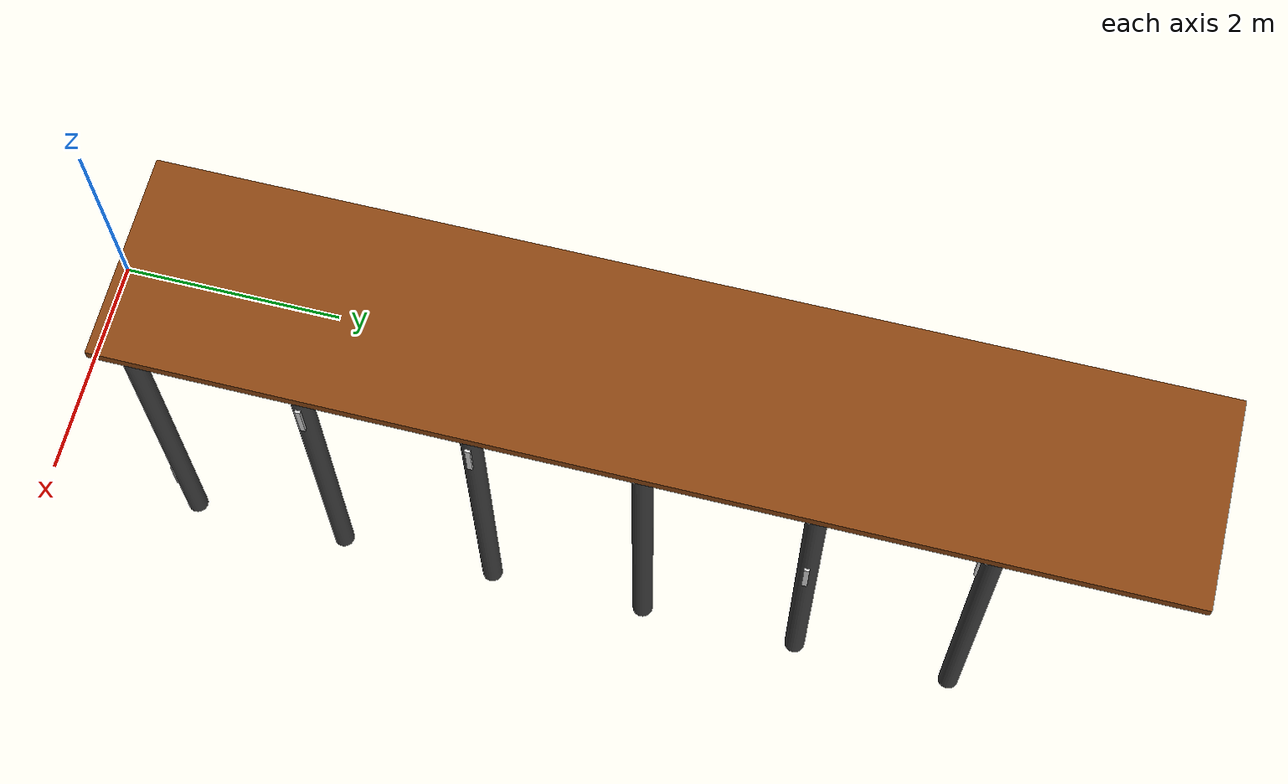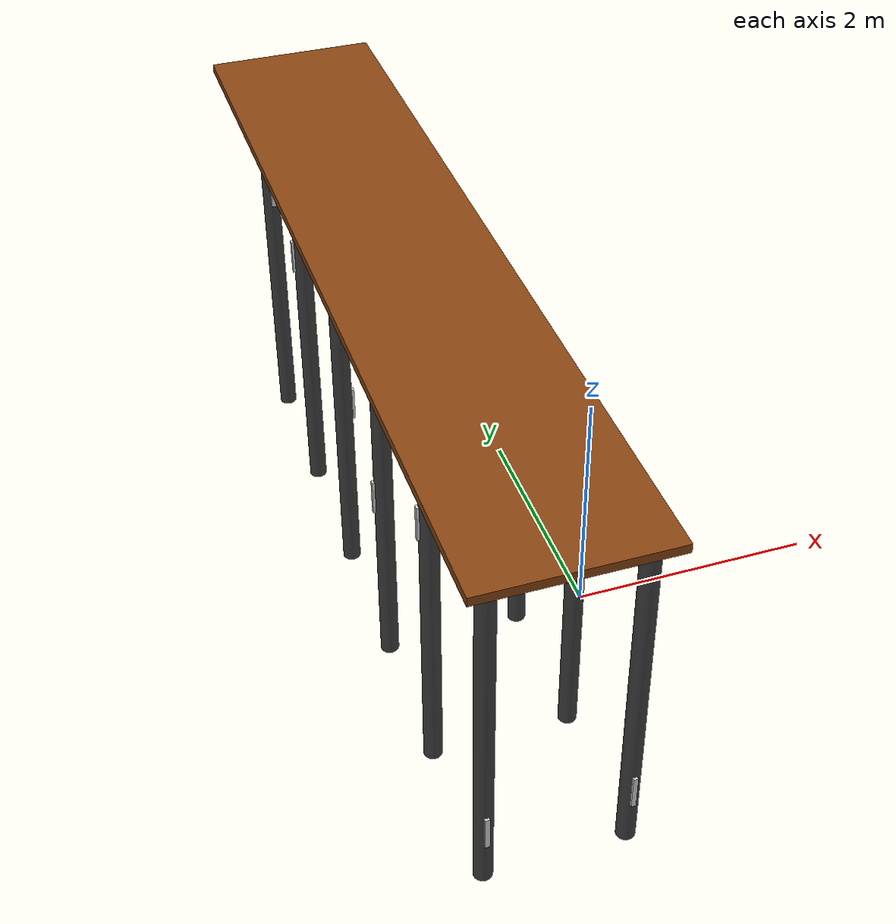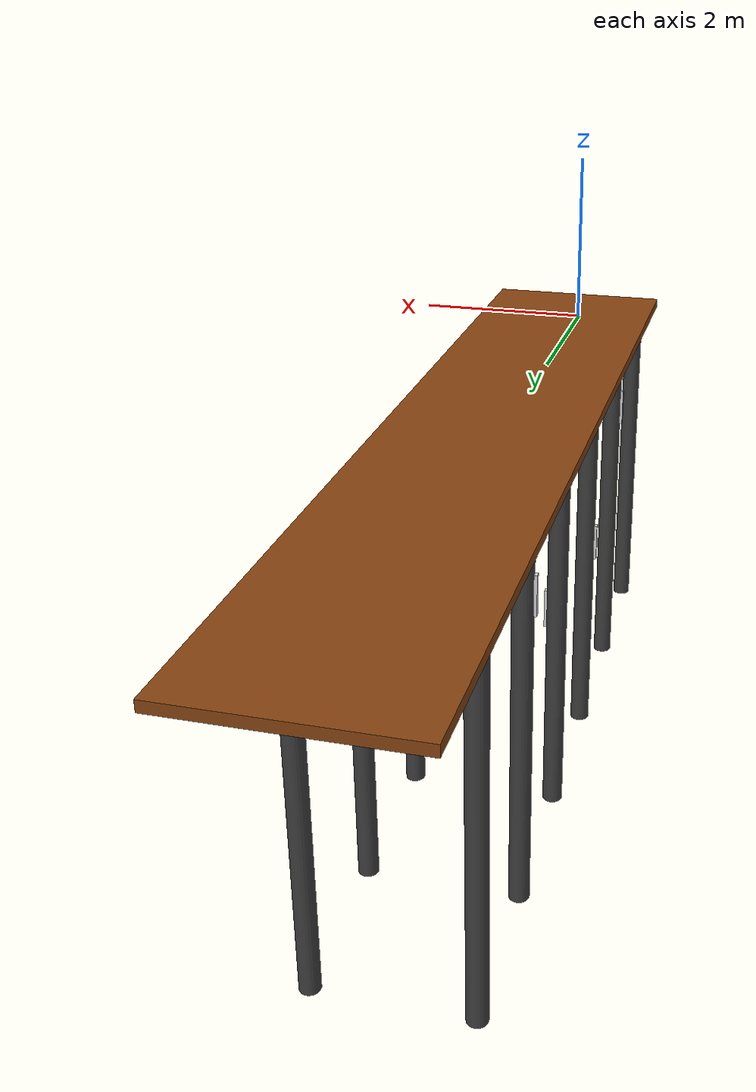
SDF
<sdf version="1.6">
 <world name="tims_world">
  <plugin filename="gz-sim-physics-system" name="gz::sim::systems::Physics"/>
  <plugin filename="gz-sim-user-commands-system" name="gz::sim::systems::UserCommands"/>
  <plugin filename="gz-sim-scene-broadcaster-system" name="gz::sim::systems::SceneBroadcaster"/>
  <plugin filename="libgz-sim-imu-system.so" name="gz::sim::systems::Imu"/>
  <plugin filename="gz-sim-buoyancy-system" name="gz::sim::systems::Buoyancy">
   <graded_buoyancy>
    <default_density>1000</default_density>
    <density_change><above_depth>0</above_depth><density>1</density></density_change>
   </graded_buoyancy>
   <enable>bluerov2</enable>
  </plugin>
  <plugin filename="ignition-gazebo-particle-emitter2-system" name="ignition::gazebo::systems::ParticleEmitter2"/>
  <include><uri>https://fuel.gazebosim.org/1.0/OpenRobotics/models/Sun</uri></include>
  <include><uri>model://fog_generator</uri></include>
  <include><uri>model://dock</uri></include>
 </world>
</sdf>

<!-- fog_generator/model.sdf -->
<sdf version="1.6">
  <model name="fog_generator">
    <pose>0 0 -3 0 -1.5707 0</pose>
    <static>true</static>
    <link name="fog_link">
      <particle_emitter name="emitter" type="box">
        <emitting>true</emitting>
        <size>20 20 4</size>
        <particle_size>1 1 1</particle_size>
        <lifetime>30</lifetime>
        <min_velocity>0.1</min_velocity>
        <max_velocity>0.2</max_velocity>
        <scale_rate>0.5</scale_rate>
        <rate>10</rate>
        <material>
          <diffuse>0.7 0.7 0.7</diffuse>
          <specular>1.0 1.0 1.0</specular>
          <pbr>
            <metal>
              <albedo_map>materials/textures/fog.png</albedo_map>
            </metal>
          </pbr>
        </material>
        <color_range_image>materials/textures/fogcolors.png</color_range_image>
      </particle_emitter>
    </link>
  </model>
</sdf>

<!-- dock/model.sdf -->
<sdf version="1.6">
  <model name="custom_model">
    <static>true</static>

    <link name="dock_platform">
      <pose>0 5 0.25 0 0 0</pose>
      <collision name="dock_platform_collision">
        <geometry>
          <box><size>2 10 0.1</size></box>
        </geometry>
      </collision>
      <visual name="dock_platform_visual">
        <geometry>
          <box><size>2 10 0.1</size></box>
        </geometry>

        <material>
            <ambient>0.54 0.27 0.07 1 </ambient>
            <diffuse>0.54 0.27 0.07 1 </diffuse>
            <specular>1 1 1 1</specular>
        </material>

      </visual>
    </link>

    <link name="cylinder0">
      <pose>0.75 0.25 -1.75 0 0 0 </pose>
      <collision name="cylinder0_collision">
        <geometry>
          <cylinder><radius>0.1</radius><length>4</length></cylinder>
        </geometry>
      </collision>
      <visual name="cylinder0_visual">
        <geometry>
          <cylinder><radius>0.1</radius><length>4</length></cylinder>
        </geometry>

        <material>
            <ambient>0.25 0.25 0.25 1 </ambient>
            <diffuse>0.25 0.25 0.25 1 </diffuse>
            <specular>1 1 1 1</specular>
        </material>

      </visual>
    </link>

    <link name="anode_0">
      <pose>0.75 0.15 -3.0 0 0 0 </pose>
      <collision name="anode_0_collision">
        <geometry>
          <box><size>0.05 0.05 0.4</size></box>
        </geometry>
      </collision>
      <visual name="anode_0_visual">
        <geometry>
          <box><size>0.05 0.05 0.4</size></box>
        </geometry>

        <material>
            <ambient>0.85 0.85 0.85 1 </ambient>
            <diffuse>0.85 0.85 0.85 1 </diffuse>
            <specular>1 1 1 1</specular>
        </material>

      </visual>
    </link>

    <link name="cylinder1">
      <pose>-0.75 0.25 -1.75 0 0 0 </pose>
      <collision name="cylinder1_collision">
        <geometry>
          <cylinder><radius>0.1</radius><length>4</length></cylinder>
        </geometry>
      </collision>
      <visual name="cylinder1_visual">
        <geometry>
          <cylinder><radius>0.1</radius><length>4</length></cylinder>
        </geometry>

        <material>
            <ambient>0.25 0.25 0.25 1 </ambient>
            <diffuse>0.25 0.25 0.25 1 </diffuse>
            <specular>1 1 1 1</specular>
        </material>

      </visual>
    </link>

    <link name="anode_1">
      <pose>-0.75 0.15 -3.0 0 0 0 </pose>
      <collision name="anode_1_collision">
        <geometry>
          <box><size>0.05 0.05 0.4</size></box>
        </geometry>
      </collision>
      <visual name="anode_1_visual">
        <geometry>
          <box><size>0.05 0.05 0.4</size></box>
        </geometry>

        <material>
            <ambient>0.85 0.85 0.85 1 </ambient>
            <diffuse>0.85 0.85 0.85 1 </diffuse>
            <specular>1 1 1 1</specular>
        </material>

      </visual>
    </link>

    <link name="cylinder2">
      <pose>0.75 1.8333333333333333 -1.75 0 0 0 </pose>
      <collision name="cylinder2_collision">
        <geometry>
          <cylinder><radius>0.1</radius><length>4</length></cylinder>
        </geometry>
      </collision>
      <visual name="cylinder2_visual">
        <geometry>
          <cylinder><radius>0.1</radius><length>4</length></cylinder>
        </geometry>

        <material>
            <ambient>0.25 0.25 0.25 1 </ambient>
            <diffuse>0.25 0.25 0.25 1 </diffuse>
            <specular>1 1 1 1</specular>
        </material>

      </visual>
    </link>

    <link name="anode_2">
      <pose>0.85 1.8333333333333333 -0.5 0 0 0 </pose>
      <collision name="anode_2_collision">
        <geometry>
          <box><size>0.05 0.05 0.4</size></box>
        </geometry>
      </collision>
      <visual name="anode_2_visual">
        <geometry>
          <box><size>0.05 0.05 0.4</size></box>
        </geometry>

        <material>
            <ambient>0.85 0.85 0.85 1 </ambient>
            <diffuse>0.85 0.85 0.85 1 </diffuse>
            <specular>1 1 1 1</specular>
        </material>

      </visual>
    </link>

    <link name="cylinder3">
      <pose>-0.75 1.8333333333333333 -1.75 0 0 0 </pose>
      <collision name="cylinder3_collision">
        <geometry>
          <cylinder><radius>0.1</radius><length>4</length></cylinder>
        </geometry>
      </collision>
      <visual name="cylinder3_visual">
        <geometry>
          <cylinder><radius>0.1</radius><length>4</length></cylinder>
        </geometry>

        <material>
            <ambient>0.25 0.25 0.25 1 </ambient>
            <diffuse>0.25 0.25 0.25 1 </diffuse>
            <specular>1 1 1 1</specular>
        </material>

      </visual>
    </link>

    <link name="anode_3">
      <pose>-0.85 1.8333333333333333 -0.5 0 0 0 </pose>
      <collision name="anode_3_collision">
        <geometry>
          <box><size>0.05 0.05 0.4</size></box>
        </geometry>
      </collision>
      <visual name="anode_3_visual">
        <geometry>
          <box><size>0.05 0.05 0.4</size></box>
        </geometry>

        <material>
            <ambient>0.85 0.85 0.85 1 </ambient>
            <diffuse>0.85 0.85 0.85 1 </diffuse>
            <specular>1 1 1 1</specular>
        </material>

      </visual>
    </link>

    <link name="cylinder4">
      <pose>0.75 3.4166666666666665 -1.75 0 0 0 </pose>
      <collision name="cylinder4_collision">
        <geometry>
          <cylinder><radius>0.1</radius><length>4</length></cylinder>
        </geometry>
      </collision>
      <visual name="cylinder4_visual">
        <geometry>
          <cylinder><radius>0.1</radius><length>4</length></cylinder>
        </geometry>

        <material>
            <ambient>0.25 0.25 0.25 1 </ambient>
            <diffuse>0.25 0.25 0.25 1 </diffuse>
            <specular>1 1 1 1</specular>
        </material>

      </visual>
    </link>

    <link name="anode_4">
      <pose>0.85 3.4166666666666665 -0.5 0 0 0 </pose>
      <collision name="anode_4_collision">
        <geometry>
          <box><size>0.05 0.05 0.4</size></box>
        </geometry>
      </collision>
      <visual name="anode_4_visual">
        <geometry>
          <box><size>0.05 0.05 0.4</size></box>
        </geometry>

        <material>
            <ambient>0.85 0.85 0.85 1 </ambient>
            <diffuse>0.85 0.85 0.85 1 </diffuse>
            <specular>1 1 1 1</specular>
        </material>

      </visual>
    </link>

    <link name="cylinder5">
      <pose>-0.75 3.4166666666666665 -1.75 0 0 0 </pose>
      <collision name="cylinder5_collision">
        <geometry>
          <cylinder><radius>0.1</radius><length>4</length></cylinder>
        </geometry>
      </collision>
      <visual name="cylinder5_visual">
        <geometry>
          <cylinder><radius>0.1</radius><length>4</length></cylinder>
        </geometry>

        <material>
            <ambient>0.25 0.25 0.25 1 </ambient>
            <diffuse>0.25 0.25 0.25 1 </diffuse>
            <specular>1 1 1 1</specular>
        </material>

      </visual>
    </link>

    <link name="anode_5">
      <pose>-0.85 3.4166666666666665 -1.5 0 0 0 </pose>
      <collision name="anode_5_collision">
        <geometry>
          <box><size>0.05 0.05 0.4</size></box>
        </geometry>
      </collision>
      <visual name="anode_5_visual">
        <geometry>
          <box><size>0.05 0.05 0.4</size></box>
        </geometry>

        <material>
            <ambient>0.85 0.85 0.85 1 </ambient>
            <diffuse>0.85 0.85 0.85 1 </diffuse>
            <specular>1 1 1 1</specular>
        </material>

      </visual>
    </link>

    <link name="cylinder6">
      <pose>0.75 5.0 -1.75 0 0 0 </pose>
      <collision name="cylinder6_collision">
        <geometry>
          <cylinder><radius>0.1</radius><length>4</length></cylinder>
        </geometry>
      </collision>
      <visual name="cylinder6_visual">
        <geometry>
          <cylinder><radius>0.1</radius><length>4</length></cylinder>
        </geometry>

        <material>
            <ambient>0.25 0.25 0.25 1 </ambient>
            <diffuse>0.25 0.25 0.25 1 </diffuse>
            <specular>1 1 1 1</specular>
        </material>

      </visual>
    </link>

    <link name="anode_6">
      <pose>0.65 5.0 -0.5 0 0 0 </pose>
      <collision name="anode_6_collision">
        <geometry>
          <box><size>0.05 0.05 0.4</size></box>
        </geometry>
      </collision>
      <visual name="anode_6_visual">
        <geometry>
          <box><size>0.05 0.05 0.4</size></box>
        </geometry>

        <material>
            <ambient>0.85 0.85 0.85 1 </ambient>
            <diffuse>0.85 0.85 0.85 1 </diffuse>
            <specular>1 1 1 1</specular>
        </material>

      </visual>
    </link>

    <link name="cylinder7">
      <pose>-0.75 5.0 -1.75 0 0 0 </pose>
      <collision name="cylinder7_collision">
        <geometry>
          <cylinder><radius>0.1</radius><length>4</length></cylinder>
        </geometry>
      </collision>
      <visual name="cylinder7_visual">
        <geometry>
          <cylinder><radius>0.1</radius><length>4</length></cylinder>
        </geometry>

        <material>
            <ambient>0.25 0.25 0.25 1 </ambient>
            <diffuse>0.25 0.25 0.25 1 </diffuse>
            <specular>1 1 1 1</specular>
        </material>

      </visual>
    </link>

    <link name="anode_7">
      <pose>-0.65 5.0 -1.5 0 0 0 </pose>
      <collision name="anode_7_collision">
        <geometry>
          <box><size>0.05 0.05 0.4</size></box>
        </geometry>
      </collision>
      <visual name="anode_7_visual">
        <geometry>
          <box><size>0.05 0.05 0.4</size></box>
        </geometry>

        <material>
            <ambient>0.85 0.85 0.85 1 </ambient>
            <diffuse>0.85 0.85 0.85 1 </diffuse>
            <specular>1 1 1 1</specular>
        </material>

      </visual>
    </link>

    <link name="cylinder8">
      <pose>0.75 6.583333333333333 -1.75 0 0 0 </pose>
      <collision name="cylinder8_collision">
        <geometry>
          <cylinder><radius>0.1</radius><length>4</length></cylinder>
        </geometry>
      </collision>
      <visual name="cylinder8_visual">
        <geometry>
          <cylinder><radius>0.1</radius><length>4</length></cylinder>
        </geometry>

        <material>
            <ambient>0.25 0.25 0.25 1 </ambient>
            <diffuse>0.25 0.25 0.25 1 </diffuse>
            <specular>1 1 1 1</specular>
        </material>

      </visual>
    </link>

    <link name="anode_8">
      <pose>0.85 6.583333333333333 -1.5 0 0 0 </pose>
      <collision name="anode_8_collision">
        <geometry>
          <box><size>0.05 0.05 0.4</size></box>
        </geometry>
      </collision>
      <visual name="anode_8_visual">
        <geometry>
          <box><size>0.05 0.05 0.4</size></box>
        </geometry>

        <material>
            <ambient>0.85 0.85 0.85 1 </ambient>
            <diffuse>0.85 0.85 0.85 1 </diffuse>
            <specular>1 1 1 1</specular>
        </material>

      </visual>
    </link>

    <link name="cylinder9">
      <pose>-0.75 6.583333333333333 -1.75 0 0 0 </pose>
      <collision name="cylinder9_collision">
        <geometry>
          <cylinder><radius>0.1</radius><length>4</length></cylinder>
        </geometry>
      </collision>
      <visual name="cylinder9_visual">
        <geometry>
          <cylinder><radius>0.1</radius><length>4</length></cylinder>
        </geometry>

        <material>
            <ambient>0.25 0.25 0.25 1 </ambient>
            <diffuse>0.25 0.25 0.25 1 </diffuse>
            <specular>1 1 1 1</specular>
        </material>

      </visual>
    </link>

    <link name="anode_9">
      <pose>-0.85 6.583333333333333 -0.5 0 0 0 </pose>
      <collision name="anode_9_collision">
        <geometry>
          <box><size>0.05 0.05 0.4</size></box>
        </geometry>
      </collision>
      <visual name="anode_9_visual">
        <geometry>
          <box><size>0.05 0.05 0.4</size></box>
        </geometry>

        <material>
            <ambient>0.85 0.85 0.85 1 </ambient>
            <diffuse>0.85 0.85 0.85 1 </diffuse>
            <specular>1 1 1 1</specular>
        </material>

      </visual>
    </link>

    <link name="cylinder10">
      <pose>0.75 8.166666666666666 -1.75 0 0 0 </pose>
      <collision name="cylinder10_collision">
        <geometry>
          <cylinder><radius>0.1</radius><length>4</length></cylinder>
        </geometry>
      </collision>
      <visual name="cylinder10_visual">
        <geometry>
          <cylinder><radius>0.1</radius><length>4</length></cylinder>
        </geometry>

        <material>
            <ambient>0.25 0.25 0.25 1 </ambient>
            <diffuse>0.25 0.25 0.25 1 </diffuse>
            <specular>1 1 1 1</specular>
        </material>

      </visual>
    </link>

    <link name="anode_10">
      <pose>0.75 8.066666666666666 -0.5 0 0 0 </pose>
      <collision name="anode_10_collision">
        <geometry>
          <box><size>0.05 0.05 0.4</size></box>
        </geometry>
      </collision>
      <visual name="anode_10_visual">
        <geometry>
          <box><size>0.05 0.05 0.4</size></box>
        </geometry>

        <material>
            <ambient>0.85 0.85 0.85 1 </ambient>
            <diffuse>0.85 0.85 0.85 1 </diffuse>
            <specular>1 1 1 1</specular>
        </material>

      </visual>
    </link>

    <link name="cylinder11">
      <pose>-0.75 8.166666666666666 -1.75 0 0 0 </pose>
      <collision name="cylinder11_collision">
        <geometry>
          <cylinder><radius>0.1</radius><length>4</length></cylinder>
        </geometry>
      </collision>
      <visual name="cylinder11_visual">
        <geometry>
          <cylinder><radius>0.1</radius><length>4</length></cylinder>
        </geometry>

        <material>
            <ambient>0.25 0.25 0.25 1 </ambient>
            <diffuse>0.25 0.25 0.25 1 </diffuse>
            <specular>1 1 1 1</specular>
        </material>

      </visual>
    </link>

    <link name="anode_11">
      <pose>-0.75 8.066666666666666 -0.5 0 0 0 </pose>
      <collision name="anode_11_collision">
        <geometry>
          <box><size>0.05 0.05 0.4</size></box>
        </geometry>
      </collision>
      <visual name="anode_11_visual">
        <geometry>
          <box><size>0.05 0.05 0.4</size></box>
        </geometry>

        <material>
            <ambient>0.85 0.85 0.85 1 </ambient>
            <diffuse>0.85 0.85 0.85 1 </diffuse>
            <specular>1 1 1 1</specular>
        </material>

      </visual>
    </link>

    <!-- Add more links (boxes/cylinders) here -->
  </model>
</sdf>
